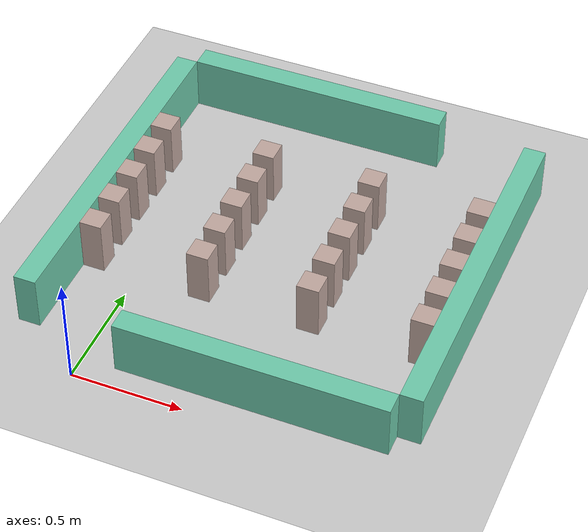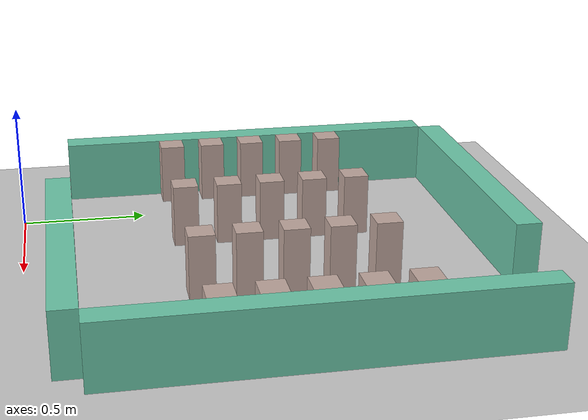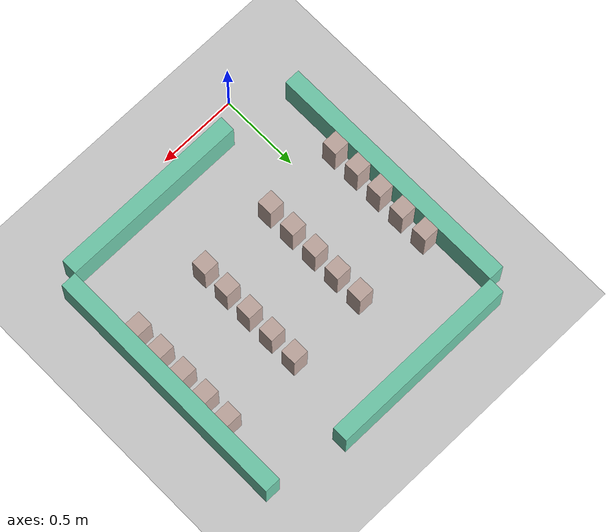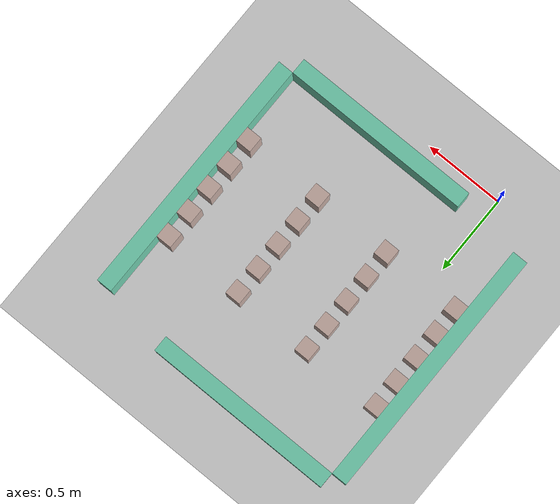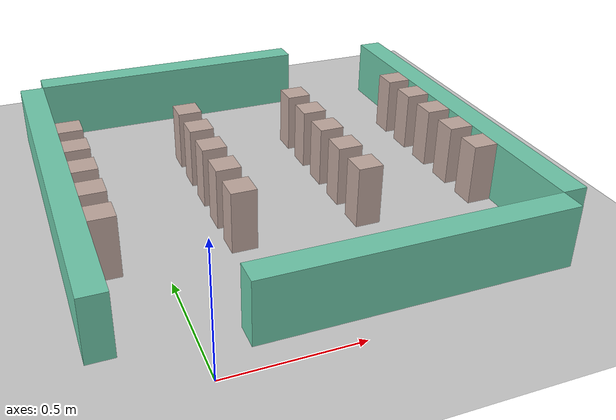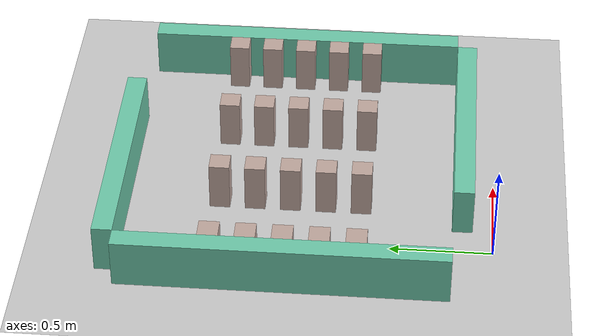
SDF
<sdf version="1.4">
 <world name="default">
  <model name="maybe">
   <pose>0.55 1 0 0 -0 0</pose>
   <link name="Wall_0">
    <collision name="Wall_0_Collision">
     <geometry><box><size>1.6 0.1 0.25</size></box></geometry>
     <pose>0 0 0.125 0 -0 0</pose>
    </collision>
    <visual name="Wall_0_Visual">
     <pose>0 0 0.125 0 -0 0</pose>
     <geometry><box><size>1.6 0.1 0.25</size></box></geometry>
     <material>
      <script><uri>file://media/materials/scripts/gazebo.material</uri><name>Gazebo/Grey</name></script>
      <ambient>0.435294 0.796078 0.67451 1</ambient>
     </material>
    </visual>
    <pose>-0.85 0 0 0 -0 1.5708</pose>
   </link>
   <link name="Wall_10">
    <collision name="Wall_10_Collision">
     <geometry><box><size>0.1 0.1 0.25</size></box></geometry>
     <pose>0 0 0.125 0 -0 0</pose>
    </collision>
    <visual name="Wall_10_Visual">
     <pose>0 0 0.125 0 -0 0</pose>
     <geometry><box><size>0.1 0.1 0.25</size></box></geometry>
     <material>
      <script><uri>file://media/materials/scripts/gazebo.material</uri><name>Gazebo/Grey</name></script>
      <ambient>0.760784 0.662745 0.627451 1</ambient>
     </material>
    </visual>
    <pose>-0.75 0.175 0 0 -0 0</pose>
   </link>
   <link name="Wall_12">
    <collision name="Wall_12_Collision">
     <geometry><box><size>0.1 0.1 0.25</size></box></geometry>
     <pose>0 0 0.125 0 -0 0</pose>
    </collision>
    <visual name="Wall_12_Visual">
     <pose>0 0 0.125 0 -0 0</pose>
     <geometry><box><size>0.1 0.1 0.25</size></box></geometry>
     <material>
      <script><uri>file://media/materials/scripts/gazebo.material</uri><name>Gazebo/Grey</name></script>
      <ambient>0.760784 0.662745 0.627451 1</ambient>
     </material>
    </visual>
    <pose>-0.75 0 0 0 -0 0</pose>
   </link>
   <link name="Wall_14">
    <collision name="Wall_14_Collision">
     <geometry><box><size>0.1 0.1 0.25</size></box></geometry>
     <pose>0 0 0.125 0 -0 0</pose>
    </collision>
    <visual name="Wall_14_Visual">
     <pose>0 0 0.125 0 -0 0</pose>
     <geometry><box><size>0.1 0.1 0.25</size></box></geometry>
     <material>
      <script><uri>file://media/materials/scripts/gazebo.material</uri><name>Gazebo/Grey</name></script>
      <ambient>0.760784 0.662745 0.627451 1</ambient>
     </material>
    </visual>
    <pose>-0.75 -0.175 0 0 -0 0</pose>
   </link>
   <link name="Wall_16">
    <collision name="Wall_16_Collision">
     <geometry><box><size>0.1 0.1 0.25</size></box></geometry>
     <pose>0 0 0.125 0 -0 0</pose>
    </collision>
    <visual name="Wall_16_Visual">
     <pose>0 0 0.125 0 -0 0</pose>
     <geometry><box><size>0.1 0.1 0.25</size></box></geometry>
     <material>
      <script><uri>file://media/materials/scripts/gazebo.material</uri><name>Gazebo/Grey</name></script>
      <ambient>0.760784 0.662745 0.627451 1</ambient>
     </material>
    </visual>
    <pose>-0.75 -0.35 0 0 -0 0</pose>
   </link>
   <link name="Wall_18">
    <collision name="Wall_18_Collision">
     <geometry><box><size>0.1 0.1 0.25</size></box></geometry>
     <pose>0 0 0.125 0 -0 0</pose>
    </collision>
    <visual name="Wall_18_Visual">
     <pose>0 0 0.125 0 -0 0</pose>
     <geometry><box><size>0.1 0.1 0.25</size></box></geometry>
     <material>
      <script><uri>file://media/materials/scripts/gazebo.material</uri><name>Gazebo/Grey</name></script>
      <ambient>0.760784 0.662745 0.627451 1</ambient>
     </material>
    </visual>
    <pose>-0.25 0.35 0 0 -0 0</pose>
   </link>
   <link name="Wall_2">
    <collision name="Wall_2_Collision">
     <geometry><box><size>1.6 0.1 0.25</size></box></geometry>
     <pose>0 0 0.125 0 -0 0</pose>
    </collision>
    <visual name="Wall_2_Visual">
     <pose>0 0 0.125 0 -0 0</pose>
     <geometry><box><size>1.6 0.1 0.25</size></box></geometry>
     <material>
      <script><uri>file://media/materials/scripts/gazebo.material</uri><name>Gazebo/Grey</name></script>
      <ambient>0.435294 0.796078 0.67451 1</ambient>
     </material>
    </visual>
    <pose>0.85 0 0 0 -0 1.5708</pose>
   </link>
   <link name="Wall_21">
    <collision name="Wall_21_Collision">
     <geometry><box><size>0.1 0.1 0.25</size></box></geometry>
     <pose>0 0 0.125 0 -0 0</pose>
    </collision>
    <visual name="Wall_21_Visual">
     <pose>0 0 0.125 0 -0 0</pose>
     <geometry><box><size>0.1 0.1 0.25</size></box></geometry>
     <material>
      <script><uri>file://media/materials/scripts/gazebo.material</uri><name>Gazebo/Grey</name></script>
      <ambient>0.760784 0.662745 0.627451 1</ambient>
     </material>
    </visual>
    <pose>0.25 0.35 0 0 -0 0</pose>
   </link>
   <link name="Wall_23">
    <collision name="Wall_23_Collision">
     <geometry><box><size>0.1 0.1 0.25</size></box></geometry>
     <pose>0 0 0.125 0 -0 0</pose>
    </collision>
    <visual name="Wall_23_Visual">
     <pose>0 0 0.125 0 -0 0</pose>
     <geometry><box><size>0.1 0.1 0.25</size></box></geometry>
     <material>
      <script><uri>file://media/materials/scripts/gazebo.material</uri><name>Gazebo/Grey</name></script>
      <ambient>0.760784 0.662745 0.627451 1</ambient>
     </material>
    </visual>
    <pose>0.75 0.35 0 0 -0 0</pose>
   </link>
   <link name="Wall_25">
    <collision name="Wall_25_Collision">
     <geometry><box><size>0.1 0.1 0.25</size></box></geometry>
     <pose>0 0 0.125 0 -0 0</pose>
    </collision>
    <visual name="Wall_25_Visual">
     <pose>0 0 0.125 0 -0 0</pose>
     <geometry><box><size>0.1 0.1 0.25</size></box></geometry>
     <material>
      <script><uri>file://media/materials/scripts/gazebo.material</uri><name>Gazebo/Grey</name></script>
      <ambient>0.760784 0.662745 0.627451 1</ambient>
     </material>
    </visual>
    <pose>-0.25 0.175 0 0 -0 0</pose>
   </link>
   <link name="Wall_27">
    <collision name="Wall_27_Collision">
     <geometry><box><size>0.1 0.1 0.25</size></box></geometry>
     <pose>0 0 0.125 0 -0 0</pose>
    </collision>
    <visual name="Wall_27_Visual">
     <pose>0 0 0.125 0 -0 0</pose>
     <geometry><box><size>0.1 0.1 0.25</size></box></geometry>
     <material>
      <script><uri>file://media/materials/scripts/gazebo.material</uri><name>Gazebo/Grey</name></script>
      <ambient>0.760784 0.662745 0.627451 1</ambient>
     </material>
    </visual>
    <pose>-0.25 0 0 0 -0 0</pose>
   </link>
   <link name="Wall_29">
    <collision name="Wall_29_Collision">
     <geometry><box><size>0.1 0.1 0.25</size></box></geometry>
     <pose>0 0 0.125 0 -0 0</pose>
    </collision>
    <visual name="Wall_29_Visual">
     <pose>0 0 0.125 0 -0 0</pose>
     <geometry><box><size>0.1 0.1 0.25</size></box></geometry>
     <material>
      <script><uri>file://media/materials/scripts/gazebo.material</uri><name>Gazebo/Grey</name></script>
      <ambient>0.760784 0.662745 0.627451 1</ambient>
     </material>
    </visual>
    <pose>-0.25 -0.175 0 0 -0 0</pose>
   </link>
   <link name="Wall_32">
    <collision name="Wall_32_Collision">
     <geometry><box><size>0.1 0.1 0.25</size></box></geometry>
     <pose>0 0 0.125 0 -0 0</pose>
    </collision>
    <visual name="Wall_32_Visual">
     <pose>0 0 0.125 0 -0 0</pose>
     <geometry><box><size>0.1 0.1 0.25</size></box></geometry>
     <material>
      <script><uri>file://media/materials/scripts/gazebo.material</uri><name>Gazebo/Grey</name></script>
      <ambient>0.760784 0.662745 0.627451 1</ambient>
     </material>
    </visual>
    <pose>0.25 0.175 0 0 -0 0</pose>
   </link>
   <link name="Wall_34">
    <collision name="Wall_34_Collision">
     <geometry><box><size>0.1 0.1 0.25</size></box></geometry>
     <pose>0 0 0.125 0 -0 0</pose>
    </collision>
    <visual name="Wall_34_Visual">
     <pose>0 0 0.125 0 -0 0</pose>
     <geometry><box><size>0.1 0.1 0.25</size></box></geometry>
     <material>
      <script><uri>file://media/materials/scripts/gazebo.material</uri><name>Gazebo/Grey</name></script>
      <ambient>0.760784 0.662745 0.627451 1</ambient>
     </material>
    </visual>
    <pose>-0.25 -0.35 0 0 -0 0</pose>
   </link>
   <link name="Wall_36">
    <collision name="Wall_36_Collision">
     <geometry><box><size>0.1 0.1 0.25</size></box></geometry>
     <pose>0 0 0.125 0 -0 0</pose>
    </collision>
    <visual name="Wall_36_Visual">
     <pose>0 0 0.125 0 -0 0</pose>
     <geometry><box><size>0.1 0.1 0.25</size></box></geometry>
     <material>
      <script><uri>file://media/materials/scripts/gazebo.material</uri><name>Gazebo/Grey</name></script>
      <ambient>0.760784 0.662745 0.627451 1</ambient>
     </material>
    </visual>
    <pose>0.25 0 0 0 -0 0</pose>
   </link>
   <link name="Wall_38">
    <collision name="Wall_38_Collision">
     <geometry><box><size>0.1 0.1 0.25</size></box></geometry>
     <pose>0 0 0.125 0 -0 0</pose>
    </collision>
    <visual name="Wall_38_Visual">
     <pose>0 0 0.125 0 -0 0</pose>
     <geometry><box><size>0.1 0.1 0.25</size></box></geometry>
     <material>
      <script><uri>file://media/materials/scripts/gazebo.material</uri><name>Gazebo/Grey</name></script>
      <ambient>0.760784 0.662745 0.627451 1</ambient>
     </material>
    </visual>
    <pose>0.25 -0.175 0 0 -0 0</pose>
   </link>
   <link name="Wall_4">
    <collision name="Wall_4_Collision">
     <geometry><box><size>1.2 0.1 0.25</size></box></geometry>
     <pose>0 0 0.125 0 -0 0</pose>
    </collision>
    <visual name="Wall_4_Visual">
     <pose>0 0 0.125 0 -0 0</pose>
     <geometry><box><size>1.2 0.1 0.25</size></box></geometry>
     <material>
      <script><uri>file://media/materials/scripts/gazebo.material</uri><name>Gazebo/Grey</name></script>
      <ambient>0.435294 0.796078 0.67451 1</ambient>
     </material>
    </visual>
    <pose>-0.2 0.85 0 0 -0 0</pose>
   </link>
   <link name="Wall_40">
    <collision name="Wall_40_Collision">
     <geometry><box><size>0.1 0.1 0.25</size></box></geometry>
     <pose>0 0 0.125 0 -0 0</pose>
    </collision>
    <visual name="Wall_40_Visual">
     <pose>0 0 0.125 0 -0 0</pose>
     <geometry><box><size>0.1 0.1 0.25</size></box></geometry>
     <material>
      <script><uri>file://media/materials/scripts/gazebo.material</uri><name>Gazebo/Grey</name></script>
      <ambient>0.760784 0.662745 0.627451 1</ambient>
     </material>
    </visual>
    <pose>0.25 -0.35 0 0 -0 0</pose>
   </link>
   <link name="Wall_42">
    <collision name="Wall_42_Collision">
     <geometry><box><size>0.1 0.1 0.25</size></box></geometry>
     <pose>0 0 0.125 0 -0 0</pose>
    </collision>
    <visual name="Wall_42_Visual">
     <pose>0 0 0.125 0 -0 0</pose>
     <geometry><box><size>0.1 0.1 0.25</size></box></geometry>
     <material>
      <script><uri>file://media/materials/scripts/gazebo.material</uri><name>Gazebo/Grey</name></script>
      <ambient>0.760784 0.662745 0.627451 1</ambient>
     </material>
    </visual>
    <pose>0.75 0.175 0 0 -0 0</pose>
   </link>
   <link name="Wall_44">
    <collision name="Wall_44_Collision">
     <geometry><box><size>0.1 0.1 0.25</size></box></geometry>
     <pose>0 0 0.125 0 -0 0</pose>
    </collision>
    <visual name="Wall_44_Visual">
     <pose>0 0 0.125 0 -0 0</pose>
     <geometry><box><size>0.1 0.1 0.25</size></box></geometry>
     <material>
      <script><uri>file://media/materials/scripts/gazebo.material</uri><name>Gazebo/Grey</name></script>
      <ambient>0.760784 0.662745 0.627451 1</ambient>
     </material>
    </visual>
    <pose>0.75 0 0 0 -0 0</pose>
   </link>
   <link name="Wall_46">
    <collision name="Wall_46_Collision">
     <geometry><box><size>0.1 0.1 0.25</size></box></geometry>
     <pose>0 0 0.125 0 -0 0</pose>
    </collision>
    <visual name="Wall_46_Visual">
     <pose>0 0 0.125 0 -0 0</pose>
     <geometry><box><size>0.1 0.1 0.25</size></box></geometry>
     <material>
      <script><uri>file://media/materials/scripts/gazebo.material</uri><name>Gazebo/Grey</name></script>
      <ambient>0.760784 0.662745 0.627451 1</ambient>
     </material>
    </visual>
    <pose>0.75 -0.175 0 0 -0 0</pose>
   </link>
   <link name="Wall_48">
    <collision name="Wall_48_Collision">
     <geometry><box><size>0.1 0.1 0.25</size></box></geometry>
     <pose>0 0 0.125 0 -0 0</pose>
    </collision>
    <visual name="Wall_48_Visual">
     <pose>0 0 0.125 0 -0 0</pose>
     <geometry><box><size>0.1 0.1 0.25</size></box></geometry>
     <material>
      <script><uri>file://media/materials/scripts/gazebo.material</uri><name>Gazebo/Grey</name></script>
      <ambient>0.760784 0.662745 0.627451 1</ambient>
     </material>
    </visual>
    <pose>0.75 -0.35 0 0 -0 0</pose>
   </link>
   <link name="Wall_6">
    <collision name="Wall_6_Collision">
     <geometry><box><size>1.2 0.1 0.25</size></box></geometry>
     <pose>0 0 0.125 0 -0 0</pose>
    </collision>
    <visual name="Wall_6_Visual">
     <pose>0 0 0.125 0 -0 0</pose>
     <geometry><box><size>1.2 0.1 0.25</size></box></geometry>
     <material>
      <script><uri>file://media/materials/scripts/gazebo.material</uri><name>Gazebo/Grey</name></script>
      <ambient>0.435294 0.796078 0.67451 1</ambient>
     </material>
    </visual>
    <pose>0.2 -0.85 0 0 -0 0</pose>
   </link>
   <link name="Wall_8">
    <collision name="Wall_8_Collision">
     <geometry><box><size>0.1 0.1 0.25</size></box></geometry>
     <pose>0 0 0.125 0 -0 0</pose>
    </collision>
    <visual name="Wall_8_Visual">
     <pose>0 0 0.125 0 -0 0</pose>
     <geometry><box><size>0.1 0.1 0.25</size></box></geometry>
     <material>
      <script><uri>file://media/materials/scripts/gazebo.material</uri><name>Gazebo/Grey</name></script>
      <ambient>0.760784 0.662745 0.627451 1</ambient>
     </material>
    </visual>
    <pose>-0.75 0.35 0 0 -0 0</pose>
   </link>
   <static>1</static>
  </model>
  <scene><ambient>0.4 0.4 0.4 1</ambient><background>0.7 0.7 0.7 1</background><shadows>true</shadows></scene>
  <include><uri>model://sun</uri></include>
  <include><uri>model://ground_plane</uri></include>
  <physics type="ode">
   <real_time_update_rate>1000.0</real_time_update_rate>
   <max_step_size>0.001</max_step_size>
   <real_time_factor>1</real_time_factor>
   <ode>
    <solver>
     <type>quick</type>
     <iters>150</iters>
     <precon_iters>0</precon_iters>
     <sor>1.400000</sor>
     <use_dynamic_moi_rescaling>1</use_dynamic_moi_rescaling>
    </solver>
    <constraints>
     <cfm>0.00001</cfm>
     <erp>0.2</erp>
     <contact_max_correcting_vel>2000.000000</contact_max_correcting_vel>
     <contact_surface_layer>0.01000</contact_surface_layer>
    </constraints>
   </ode>
  </physics>
 </world>
</sdf>
